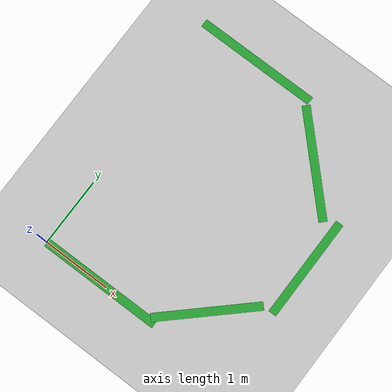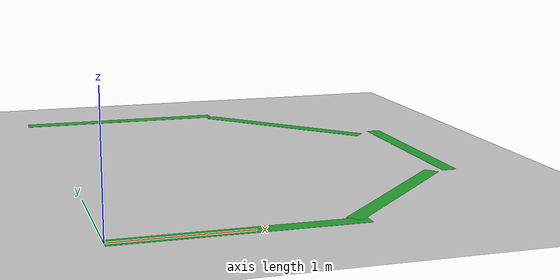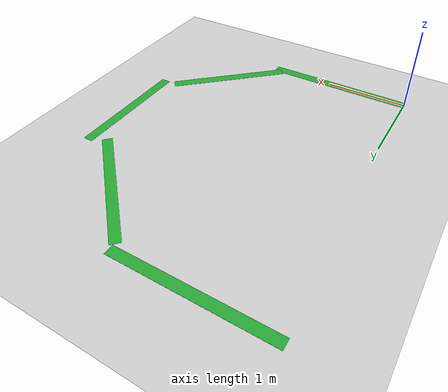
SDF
<sdf version='1.6'>
  <world name='green_s_curve'>
    <include>
      <uri>model://ground_plane</uri>
    </include>
    <include>
      <uri>model://sun</uri>
    </include>

    <scene>
      <ambient>0.45 0.45 0.45 1</ambient>
      <background>0.85 0.85 0.85 1</background>
      <shadows>1</shadows>
    </scene>

    <physics name='default_physics' default='1' type='ode'>
      <max_step_size>0.001</max_step_size>
      <real_time_factor>1</real_time_factor>
      <real_time_update_rate>1000</real_time_update_rate>
    </physics>

    <gui fullscreen='0'>
      <camera name='user_camera'>
        <pose frame=''>1.6 0.8 9.5 0 1.45 0</pose>
        <view_controller>orbit</view_controller>
        <projection_type>perspective</projection_type>
      </camera>
    </gui>

    <model name='green_line_0'>
      <static>1</static>
      <pose>0.9 0.0 0.001 0 0 0</pose>
      <link name='link'>
        <collision name='collision'>
          <geometry>
            <box>
              <size>1.8 0.12 0.002</size>
            </box>
          </geometry>
        </collision>
        <visual name='visual'>
          <geometry>
            <box>
              <size>1.8 0.12 0.002</size>
            </box>
          </geometry>
          <material>
            <script>
              <uri>file://media/materials/scripts/gazebo.material</uri>
              <name>Gazebo/Green</name>
            </script>
          </material>
        </visual>
      </link>
    </model>

    <model name='green_line_1'>
      <static>1</static>
      <pose>2.25 0.55 0.001 0 0 0.75</pose>
      <link name='link'>
        <collision name='collision'>
          <geometry>
            <box>
              <size>1.5 0.12 0.002</size>
            </box>
          </geometry>
        </collision>
        <visual name='visual'>
          <geometry>
            <box>
              <size>1.5 0.12 0.002</size>
            </box>
          </geometry>
          <material>
            <script>
              <uri>file://media/materials/scripts/gazebo.material</uri>
              <name>Gazebo/Green</name>
            </script>
          </material>
        </visual>
      </link>
    </model>

    <model name='green_line_2'>
      <static>1</static>
      <pose>2.95 1.8 0.001 0 0 1.57</pose>
      <link name='link'>
        <collision name='collision'>
          <geometry>
            <box>
              <size>1.5 0.12 0.002</size>
            </box>
          </geometry>
        </collision>
        <visual name='visual'>
          <geometry>
            <box>
              <size>1.5 0.12 0.002</size>
            </box>
          </geometry>
          <material>
            <script>
              <uri>file://media/materials/scripts/gazebo.material</uri>
              <name>Gazebo/Green</name>
            </script>
          </material>
        </visual>
      </link>
    </model>

    <model name='green_line_3'>
      <static>1</static>
      <pose>2.2 3.0 0.001 0 0 2.35</pose>
      <link name='link'>
        <collision name='collision'>
          <geometry>
            <box>
              <size>1.6 0.12 0.002</size>
            </box>
          </geometry>
        </collision>
        <visual name='visual'>
          <geometry>
            <box>
              <size>1.6 0.12 0.002</size>
            </box>
          </geometry>
          <material>
            <script>
              <uri>file://media/materials/scripts/gazebo.material</uri>
              <name>Gazebo/Green</name>
            </script>
          </material>
        </visual>
      </link>
    </model>

    <model name='green_line_4'>
      <static>1</static>
      <pose>0.75 3.65 0.001 0 0 3.14</pose>
      <link name='link'>
        <collision name='collision'>
          <geometry>
            <box>
              <size>1.8 0.12 0.002</size>
            </box>
          </geometry>
        </collision>
        <visual name='visual'>
          <geometry>
            <box>
              <size>1.8 0.12 0.002</size>
            </box>
          </geometry>
          <material>
            <script>
              <uri>file://media/materials/scripts/gazebo.material</uri>
              <name>Gazebo/Green</name>
            </script>
          </material>
        </visual>
      </link>
    </model>
  </world>
</sdf>
